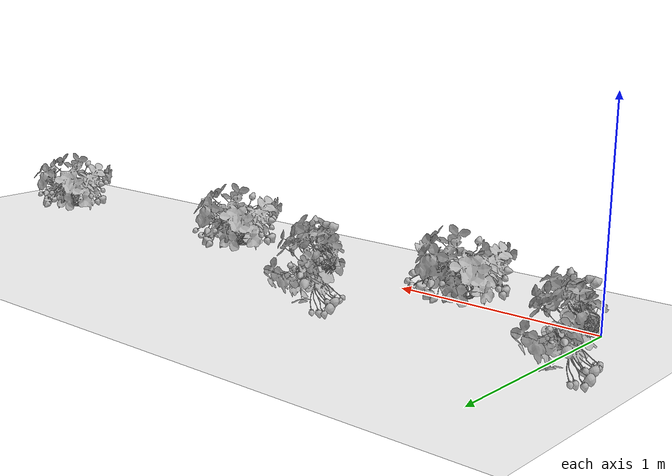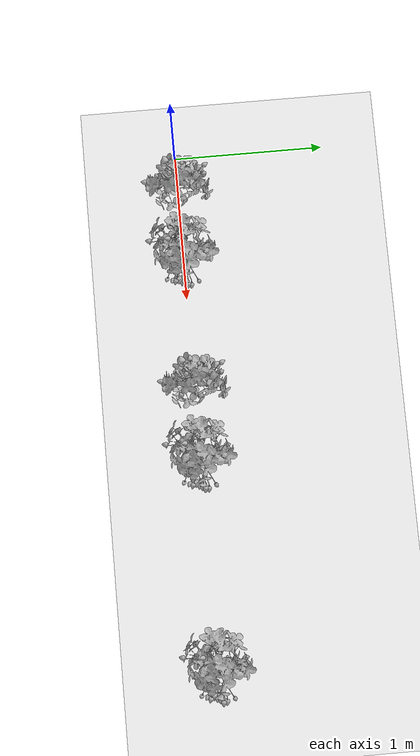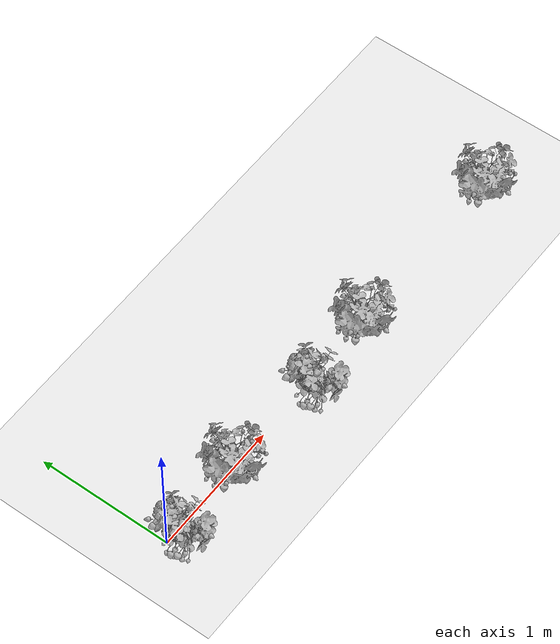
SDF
<sdf version="1.6">
 <world name="check_all_variants">
  <include><uri>model://sun</uri></include>
  <include><uri>model://ground_plane</uri></include>
  <model name="ripe">
   <static>true</static>
   <pose>0.0 0 0 1.5708 0 1.5708</pose>
   <link name="link">
    <visual name="v">
     <geometry>
      <mesh>
       <uri>file:///home/pravin/pomona_nexus/cad_assets_studio/strawberry/variants/strawberry_ripe.obj</uri>
      </mesh>
     </geometry>
    </visual>
   </link>
  </model>
  <model name="halfripe">
   <static>true</static>
   <pose>0.7 0 0 1.5708 0 1.5708</pose>
   <link name="link">
    <visual name="v">
     <geometry>
      <mesh>
       <uri>file:///home/pravin/pomona_nexus/cad_assets_studio/strawberry/variants/strawberry_halfripe.obj</uri>
      </mesh>
     </geometry>
    </visual>
   </link>
  </model>
  <model name="unripe">
   <static>true</static>
   <pose>1.4 0 0 1.5708 0 1.5708</pose>
   <link name="link">
    <visual name="v">
     <geometry>
      <mesh>
       <uri>file:///home/pravin/pomona_nexus/cad_assets_studio/strawberry/variants/strawberry_unripe.obj</uri>
      </mesh>
     </geometry>
    </visual>
   </link>
  </model>
  <model name="flower">
   <static>true</static>
   <pose>2.1 0 0 1.5708 0 1.5708</pose>
   <link name="link">
    <visual name="v">
     <geometry>
      <mesh>
       <uri>file:///home/pravin/pomona_nexus/cad_assets_studio/strawberry/variants/strawberry_flower.obj</uri>
      </mesh>
     </geometry>
    </visual>
   </link>
  </model>
  <model name="leafscorch">
   <static>true</static>
   <pose>3.5 0 0 1.5708 0 1.5708</pose>
   <link name="link">
    <visual name="v">
     <geometry>
      <mesh>
       <uri>file:///home/pravin/pomona_nexus/cad_assets_studio/strawberry/variants/strawberry_leafscorch.obj</uri>
      </mesh>
     </geometry>
    </visual>
   </link>
  </model>
 </world>
</sdf>
